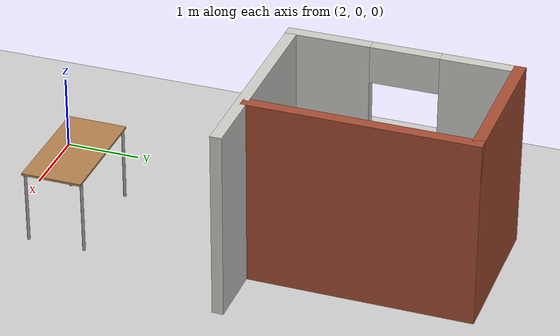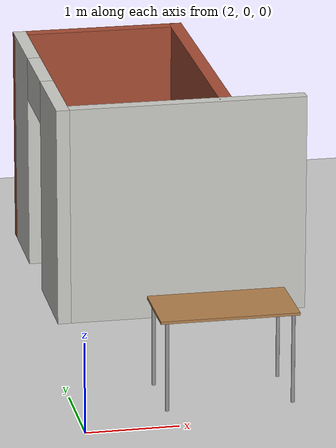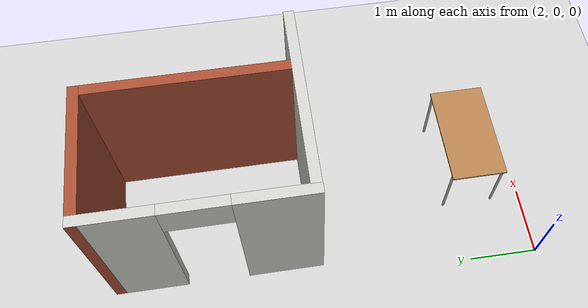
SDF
<sdf version="1.6">
 <world name="default">
  <model name="ground_plane">
   <static>1</static>
   <link name="link">
    <collision name="collision">
     <geometry><plane><normal>0 0 1</normal><size>100 100</size></plane></geometry>
     <surface>
      <contact><collide_bitmask>65535</collide_bitmask></contact>
      <friction><ode><mu>100</mu><mu2>50</mu2></ode></friction>
     </surface>
    </collision>
    <visual name="visual">
     <cast_shadows>0</cast_shadows>
     <geometry><plane><normal>0 0 1</normal><size>100 100</size></plane></geometry>
     <material>
      <script><uri>file://media/materials/scripts/gazebo.material</uri><name>Gazebo/Grey</name></script>
     </material>
    </visual>
   </link>
  </model>
  <model name="table">
   <static>1</static>
   <link name="link">
    <collision name="surface">
     <pose>0 0 1 0 -0 0</pose>
     <geometry><box><size>1.5 0.8 0.03</size></box></geometry>
     <surface><friction><ode><mu>0.6</mu><mu2>0.6</mu2></ode></friction></surface>
    </collision>
    <visual name="visual1">
     <pose>0 0 1 0 -0 0</pose>
     <geometry><box><size>1.5 0.8 0.03</size></box></geometry>
     <material>
      <script><uri>file://media/materials/scripts/gazebo.material</uri><name>Gazebo/Wood</name></script>
     </material>
    </visual>
    <collision name="front_left_leg">
     <pose>0.68 0.38 0.5 0 -0 0</pose>
     <geometry><cylinder><radius>0.02</radius><length>1</length></cylinder></geometry>
    </collision>
    <visual name="front_left_leg">
     <pose>0.68 0.38 0.5 0 -0 0</pose>
     <geometry><cylinder><radius>0.02</radius><length>1</length></cylinder></geometry>
     <material>
      <script><uri>file://media/materials/scripts/gazebo.material</uri><name>Gazebo/Grey</name></script>
     </material>
    </visual>
    <collision name="front_right_leg">
     <pose>0.68 -0.38 0.5 0 -0 0</pose>
     <geometry><cylinder><radius>0.02</radius><length>1</length></cylinder></geometry>
    </collision>
    <visual name="front_right_leg">
     <pose>0.68 -0.38 0.5 0 -0 0</pose>
     <geometry><cylinder><radius>0.02</radius><length>1</length></cylinder></geometry>
     <material>
      <script><uri>file://media/materials/scripts/gazebo.material</uri><name>Gazebo/Grey</name></script>
     </material>
    </visual>
    <collision name="back_right_leg">
     <pose>-0.68 -0.38 0.5 0 -0 0</pose>
     <geometry><cylinder><radius>0.02</radius><length>1</length></cylinder></geometry>
    </collision>
    <visual name="back_right_leg">
     <pose>-0.68 -0.38 0.5 0 -0 0</pose>
     <geometry><cylinder><radius>0.02</radius><length>1</length></cylinder></geometry>
     <material>
      <script><uri>file://media/materials/scripts/gazebo.material</uri><name>Gazebo/Grey</name></script>
     </material>
    </visual>
    <collision name="back_left_leg">
     <pose>-0.68 0.38 0.5 0 -0 0</pose>
     <geometry><cylinder><radius>0.02</radius><length>1</length></cylinder></geometry>
    </collision>
    <visual name="back_left_leg">
     <pose>-0.68 0.38 0.5 0 -0 0</pose>
     <geometry><cylinder><radius>0.02</radius><length>1</length></cylinder></geometry>
     <material>
      <script><uri>file://media/materials/scripts/gazebo.material</uri><name>Gazebo/Grey</name></script>
     </material>
    </visual>
   </link>
   <pose>3.63355 0.82495 0 0 -0 0</pose>
  </model>
  <model name="building">
   <link name="Wall_2">
    <pose>1.76194 3.85506 0 0 0 -1.5708</pose>
    <visual name="Wall_2_Visual_1">
     <pose>0.981938 0 1.25 0 -0 0</pose>
     <geometry><box><size>1.11412 0.15 2.5</size></box></geometry>
     <material>
      <script><uri>file://media/materials/scripts/gazebo.material</uri><name>Gazebo/CeilingTiled</name></script>
      <ambient>1 1 1 1</ambient>
      <shader type="pixel"/>
      <diffuse>1 1 1 1</diffuse>
      <specular>0 0 0 1</specular>
      <emissive>0 0 0 1</emissive>
     </material>
     <meta><layer>0</layer></meta>
    </visual>
    <visual name="Wall_2_Visual_2">
     <pose>-0.025124 0 2.25 0 -0 0</pose>
     <geometry><box><size>0.9 0.15 0.5</size></box></geometry>
     <material>
      <script><uri>file://media/materials/scripts/gazebo.material</uri><name>Gazebo/CeilingTiled</name></script>
      <ambient>1 1 1 1</ambient>
      <shader type="pixel"/>
      <diffuse>1 1 1 1</diffuse>
      <specular>0 0 0 1</specular>
      <emissive>0 0 0 1</emissive>
     </material>
     <meta><layer>0</layer></meta>
    </visual>
    <visual name="Wall_2_Visual_0">
     <pose>-1.00706 0 1.25 0 -0 0</pose>
     <geometry><box><size>1.06388 0.15 2.5</size></box></geometry>
     <material>
      <script><uri>file://media/materials/scripts/gazebo.material</uri><name>Gazebo/CeilingTiled</name></script>
      <ambient>1 1 1 1</ambient>
      <shader type="pixel"/>
      <diffuse>1 1 1 1</diffuse>
      <specular>0 0 0 1</specular>
      <emissive>0 0 0 1</emissive>
     </material>
     <meta><layer>0</layer></meta>
    </visual>
    <collision name="Wall_2_Collision_1">
     <pose>0.981938 0 1.25 0 -0 0</pose>
     <geometry><box><size>1.11412 0.15 2.5</size></box></geometry>
     <surface>
      <friction>
       <ode><mu>1</mu><mu2>1</mu2><fdir1>0 0 0</fdir1><slip1>0</slip1><slip2>0</slip2></ode>
       <torsional>
        <coefficient>1</coefficient>
        <patch_radius>0</patch_radius>
        <surface_radius>0</surface_radius>
        <use_patch_radius>1</use_patch_radius>
        <ode><slip>0</slip></ode>
       </torsional>
      </friction>
      <bounce><restitution_coefficient>0</restitution_coefficient><threshold>1e+06</threshold></bounce>
      <contact>
       <collide_without_contact>0</collide_without_contact>
       <collide_without_contact_bitmask>1</collide_without_contact_bitmask>
       <collide_bitmask>1</collide_bitmask>
       <ode>
        <soft_cfm>0</soft_cfm>
        <soft_erp>0.2</soft_erp>
        <kp>1e+13</kp>
        <kd>1</kd>
        <max_vel>0.01</max_vel>
        <min_depth>0</min_depth>
       </ode>
       <bullet>
        <split_impulse>1</split_impulse>
        <split_impulse_penetration_threshold>-0.01</split_impulse_penetration_threshold>
        <soft_cfm>0</soft_cfm>
        <soft_erp>0.2</soft_erp>
        <kp>1e+13</kp>
        <kd>1</kd>
       </bullet>
      </contact>
     </surface>
    </collision>
    <collision name="Wall_2_Collision_2">
     <pose>-0.025124 0 2.25 0 -0 0</pose>
     <geometry><box><size>0.9 0.15 0.5</size></box></geometry>
     <surface>
      <friction>
       <ode><mu>1</mu><mu2>1</mu2><fdir1>0 0 0</fdir1><slip1>0</slip1><slip2>0</slip2></ode>
       <torsional>
        <coefficient>1</coefficient>
        <patch_radius>0</patch_radius>
        <surface_radius>0</surface_radius>
        <use_patch_radius>1</use_patch_radius>
        <ode><slip>0</slip></ode>
       </torsional>
      </friction>
      <bounce><restitution_coefficient>0</restitution_coefficient><threshold>1e+06</threshold></bounce>
      <contact>
       <collide_without_contact>0</collide_without_contact>
       <collide_without_contact_bitmask>1</collide_without_contact_bitmask>
       <collide_bitmask>1</collide_bitmask>
       <ode>
        <soft_cfm>0</soft_cfm>
        <soft_erp>0.2</soft_erp>
        <kp>1e+13</kp>
        <kd>1</kd>
        <max_vel>0.01</max_vel>
        <min_depth>0</min_depth>
       </ode>
       <bullet>
        <split_impulse>1</split_impulse>
        <split_impulse_penetration_threshold>-0.01</split_impulse_penetration_threshold>
        <soft_cfm>0</soft_cfm>
        <soft_erp>0.2</soft_erp>
        <kp>1e+13</kp>
        <kd>1</kd>
       </bullet>
      </contact>
     </surface>
    </collision>
    <collision name="Wall_2_Collision_0">
     <pose>-1.00706 0 1.25 0 -0 0</pose>
     <geometry><box><size>1.06388 0.15 2.5</size></box></geometry>
     <surface>
      <friction>
       <ode><mu>1</mu><mu2>1</mu2><fdir1>0 0 0</fdir1><slip1>0</slip1><slip2>0</slip2></ode>
       <torsional>
        <coefficient>1</coefficient>
        <patch_radius>0</patch_radius>
        <surface_radius>0</surface_radius>
        <use_patch_radius>1</use_patch_radius>
        <ode><slip>0</slip></ode>
       </torsional>
      </friction>
      <bounce><restitution_coefficient>0</restitution_coefficient><threshold>1e+06</threshold></bounce>
      <contact>
       <collide_without_contact>0</collide_without_contact>
       <collide_without_contact_bitmask>1</collide_without_contact_bitmask>
       <collide_bitmask>1</collide_bitmask>
       <ode>
        <soft_cfm>0</soft_cfm>
        <soft_erp>0.2</soft_erp>
        <kp>1e+13</kp>
        <kd>1</kd>
        <max_vel>0.01</max_vel>
        <min_depth>0</min_depth>
       </ode>
       <bullet>
        <split_impulse>1</split_impulse>
        <split_impulse_penetration_threshold>-0.01</split_impulse_penetration_threshold>
        <soft_cfm>0</soft_cfm>
        <soft_erp>0.2</soft_erp>
        <kp>1e+13</kp>
        <kd>1</kd>
       </bullet>
      </contact>
     </surface>
    </collision>
   </link>
   <link name="Wall_36">
    <pose>2.68694 5.31906 0 0 -0 0</pose>
    <visual name="Wall_36_Visual">
     <pose>0 0 1.25 0 -0 0</pose>
     <geometry><box><size>2 0.15 2.5</size></box></geometry>
     <material>
      <script><uri>file://media/materials/scripts/gazebo.material</uri><name>Gazebo/Bricks</name></script>
      <ambient>1 1 1 1</ambient>
      <shader type="pixel"/>
      <diffuse>1 1 1 1</diffuse>
      <specular>0.2 0.2 0.2 1</specular>
      <emissive>0 0 0 1</emissive>
     </material>
     <meta><layer>0</layer></meta>
    </visual>
    <collision name="Wall_36_Collision">
     <pose>0 0 1.25 0 -0 0</pose>
     <geometry><box><size>2 0.15 2.5</size></box></geometry>
     <surface>
      <friction>
       <ode><mu>1</mu><mu2>1</mu2><fdir1>0 0 0</fdir1><slip1>0</slip1><slip2>0</slip2></ode>
       <torsional>
        <coefficient>1</coefficient>
        <patch_radius>0</patch_radius>
        <surface_radius>0</surface_radius>
        <use_patch_radius>1</use_patch_radius>
        <ode><slip>0</slip></ode>
       </torsional>
      </friction>
      <bounce><restitution_coefficient>0</restitution_coefficient><threshold>1e+06</threshold></bounce>
      <contact>
       <collide_without_contact>0</collide_without_contact>
       <collide_without_contact_bitmask>1</collide_without_contact_bitmask>
       <collide_bitmask>1</collide_bitmask>
       <ode>
        <soft_cfm>0</soft_cfm>
        <soft_erp>0.2</soft_erp>
        <kp>1e+13</kp>
        <kd>1</kd>
        <max_vel>0.01</max_vel>
        <min_depth>0</min_depth>
       </ode>
       <bullet>
        <split_impulse>1</split_impulse>
        <split_impulse_penetration_threshold>-0.01</split_impulse_penetration_threshold>
        <soft_cfm>0</soft_cfm>
        <soft_erp>0.2</soft_erp>
        <kp>1e+13</kp>
        <kd>1</kd>
       </bullet>
      </contact>
     </surface>
    </collision>
   </link>
   <link name="Wall_38">
    <pose>3.61194 3.89406 0 0 0 -1.5708</pose>
    <visual name="Wall_38_Visual">
     <pose>0 0 1.25 0 -0 0</pose>
     <geometry><box><size>3 0.15 2.5</size></box></geometry>
     <material>
      <script><uri>file://media/materials/scripts/gazebo.material</uri><name>Gazebo/Bricks</name></script>
      <ambient>1 1 1 1</ambient>
      <shader type="pixel"/>
      <diffuse>1 1 1 1</diffuse>
      <specular>0.2 0.2 0.2 1</specular>
      <emissive>0 0 0 1</emissive>
     </material>
     <meta><layer>0</layer></meta>
    </visual>
    <collision name="Wall_38_Collision">
     <pose>0 0 1.25 0 -0 0</pose>
     <geometry><box><size>3 0.15 2.5</size></box></geometry>
     <surface>
      <friction>
       <ode><mu>1</mu><mu2>1</mu2><fdir1>0 0 0</fdir1><slip1>0</slip1><slip2>0</slip2></ode>
       <torsional>
        <coefficient>1</coefficient>
        <patch_radius>0</patch_radius>
        <surface_radius>0</surface_radius>
        <use_patch_radius>1</use_patch_radius>
        <ode><slip>0</slip></ode>
       </torsional>
      </friction>
      <bounce><restitution_coefficient>0</restitution_coefficient><threshold>1e+06</threshold></bounce>
      <contact>
       <collide_without_contact>0</collide_without_contact>
       <collide_without_contact_bitmask>1</collide_without_contact_bitmask>
       <collide_bitmask>1</collide_bitmask>
       <ode>
        <soft_cfm>0</soft_cfm>
        <soft_erp>0.2</soft_erp>
        <kp>1e+13</kp>
        <kd>1</kd>
        <max_vel>0.01</max_vel>
        <min_depth>0</min_depth>
       </ode>
       <bullet>
        <split_impulse>1</split_impulse>
        <split_impulse_penetration_threshold>-0.01</split_impulse_penetration_threshold>
        <soft_cfm>0</soft_cfm>
        <soft_erp>0.2</soft_erp>
        <kp>1e+13</kp>
        <kd>1</kd>
       </bullet>
      </contact>
     </surface>
    </collision>
   </link>
   <link name="Wall_4">
    <pose>3.17218 2.39408 0 0 -0 3.14159</pose>
    <visual name="Wall_4_Visual">
     <pose>0 0 1.25 0 -0 0</pose>
     <geometry><box><size>2.682 0.15 2.5</size></box></geometry>
     <material>
      <script><uri>file://media/materials/scripts/gazebo.material</uri><name>Gazebo/CeilingTiled</name></script>
      <ambient>0.921569 0.807843 0.615686 1</ambient>
      <shader type="pixel"/>
      <diffuse>1 1 1 1</diffuse>
      <specular>0 0 0 1</specular>
      <emissive>0 0 0 1</emissive>
     </material>
     <meta><layer>0</layer></meta>
    </visual>
    <collision name="Wall_4_Collision">
     <pose>0 0 1.25 0 -0 0</pose>
     <geometry><box><size>2.682 0.15 2.5</size></box></geometry>
     <surface>
      <friction>
       <ode><mu>1</mu><mu2>1</mu2><fdir1>0 0 0</fdir1><slip1>0</slip1><slip2>0</slip2></ode>
       <torsional>
        <coefficient>1</coefficient>
        <patch_radius>0</patch_radius>
        <surface_radius>0</surface_radius>
        <use_patch_radius>1</use_patch_radius>
        <ode><slip>0</slip></ode>
       </torsional>
      </friction>
      <bounce><restitution_coefficient>0</restitution_coefficient><threshold>1e+06</threshold></bounce>
      <contact>
       <collide_without_contact>0</collide_without_contact>
       <collide_without_contact_bitmask>1</collide_without_contact_bitmask>
       <collide_bitmask>1</collide_bitmask>
       <ode>
        <soft_cfm>0</soft_cfm>
        <soft_erp>0.2</soft_erp>
        <kp>1e+13</kp>
        <kd>1</kd>
        <max_vel>0.01</max_vel>
        <min_depth>0</min_depth>
       </ode>
       <bullet>
        <split_impulse>1</split_impulse>
        <split_impulse_penetration_threshold>-0.01</split_impulse_penetration_threshold>
        <soft_cfm>0</soft_cfm>
        <soft_erp>0.2</soft_erp>
        <kp>1e+13</kp>
        <kd>1</kd>
       </bullet>
      </contact>
     </surface>
    </collision>
   </link>
   <static>1</static>
   <pose>0.55726 0.89542 0 0 -0 0</pose>
  </model>
 </world>
</sdf>
